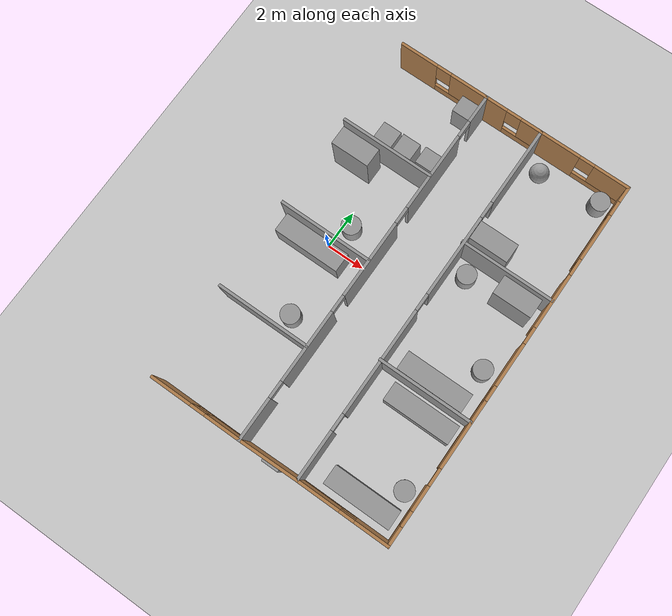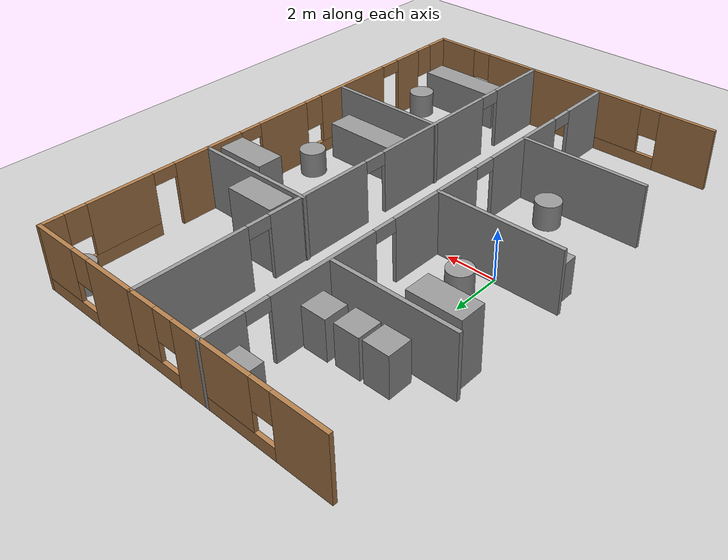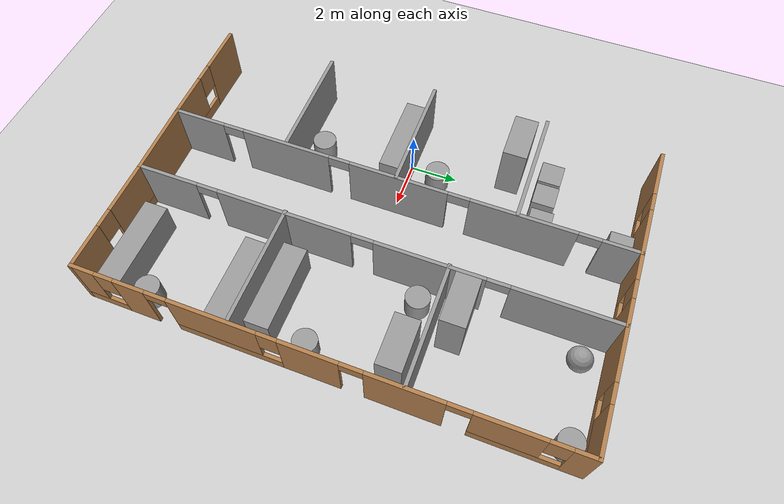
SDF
<sdf version="1.7">
 <world name="default">
  <model name="ground_plane">
   <static>1</static>
   <link name="link">
    <collision name="collision">
     <geometry><plane><normal>0 0 1</normal><size>100 100</size></plane></geometry>
     <surface><friction><ode><mu>100</mu><mu2>50</mu2></ode></friction></surface>
    </collision>
    <visual name="visual">
     <cast_shadows>0</cast_shadows>
     <geometry><plane><normal>0 0 1</normal><size>100 100</size></plane></geometry>
     <material>
      <script><uri>file://media/materials/scripts/gazebo.material</uri><name>Gazebo/Grey</name></script>
     </material>
    </visual>
   </link>
  </model>
  <model name="hospital_floor_v2">
   <link name="Door_19">
    <collision name="Door_19_Collision">
     <geometry><box><size>0.9 0.17 2</size></box></geometry>
     <pose>0 0 1 0 -0 0</pose>
    </collision>
    <visual name="Door_19_Visual">
     <pose>0 0 1 0 -0 0</pose>
     <geometry><box><size>0.9 0.17 2</size></box></geometry>
     <material>
      <script><uri>file://media/materials/scripts/gazebo.material</uri><name>Gazebo/Grey</name></script>
     </material>
    </visual>
    <pose>4.12711 -9.93446 0 0 -0 0</pose>
   </link>
   <link name="Wall_111">
    <pose>7.95 9.8256 0 0 -0 0</pose>
    <visual name="Wall_111_Visual_0">
     <pose>-1.37417 0 1.25 0 -0 0</pose>
     <geometry><box><size>2.25167 0.15 2.5</size></box></geometry>
     <material>
      <script><uri>file://media/materials/scripts/gazebo.material</uri><name>Gazebo/Wood</name></script>
      <ambient>1 1 1 1</ambient>
     </material>
     <meta><layer>0</layer></meta>
    </visual>
    <collision name="Wall_111_Collision_0">
     <geometry><box><size>2.25167 0.15 2.5</size></box></geometry>
     <pose>-1.37417 0 1.25 0 -0 0</pose>
    </collision>
    <visual name="Wall_111_Visual_1">
     <pose>1.12583 0 0.25 0 -0 0</pose>
     <geometry><box><size>2.74833 0.15 0.5</size></box></geometry>
     <material>
      <script><uri>file://media/materials/scripts/gazebo.material</uri><name>Gazebo/Wood</name></script>
      <ambient>1 1 1 1</ambient>
     </material>
     <meta><layer>0</layer></meta>
    </visual>
    <collision name="Wall_111_Collision_1">
     <geometry><box><size>2.74833 0.15 0.5</size></box></geometry>
     <pose>1.12583 0 0.25 0 -0 0</pose>
    </collision>
    <visual name="Wall_111_Visual_2">
     <pose>1.52583 0 1.5 0 -0 0</pose>
     <geometry><box><size>1.94833 0.15 2</size></box></geometry>
     <material>
      <script><uri>file://media/materials/scripts/gazebo.material</uri><name>Gazebo/Wood</name></script>
      <ambient>1 1 1 1</ambient>
     </material>
     <meta><layer>0</layer></meta>
    </visual>
    <collision name="Wall_111_Collision_2">
     <geometry><box><size>1.94833 0.15 2</size></box></geometry>
     <pose>1.52583 0 1.5 0 -0 0</pose>
    </collision>
    <visual name="Wall_111_Visual_3">
     <pose>0.151665 0 1.9 0 -0 0</pose>
     <geometry><box><size>0.8 0.15 1.2</size></box></geometry>
     <material>
      <script><uri>file://media/materials/scripts/gazebo.material</uri><name>Gazebo/Wood</name></script>
      <ambient>1 1 1 1</ambient>
     </material>
     <meta><layer>0</layer></meta>
    </visual>
    <collision name="Wall_111_Collision_3">
     <geometry><box><size>0.8 0.15 1.2</size></box></geometry>
     <pose>0.151665 0 1.9 0 -0 0</pose>
    </collision>
   </link>
   <link name="Wall_112">
    <pose>10.375 0.025599 0 0 -0 -1.5708</pose>
    <visual name="Wall_112_Visual_0">
     <pose>-9.42467 0 1.25 0 -0 0</pose>
     <geometry><box><size>0.900667 0.15 2.5</size></box></geometry>
     <material>
      <script><uri>file://media/materials/scripts/gazebo.material</uri><name>Gazebo/Wood</name></script>
      <ambient>1 1 1 1</ambient>
     </material>
     <meta><layer>0</layer></meta>
    </visual>
    <collision name="Wall_112_Collision_0">
     <geometry><box><size>0.900667 0.15 2.5</size></box></geometry>
     <pose>-9.42467 0 1.25 0 -0 0</pose>
    </collision>
    <visual name="Wall_112_Visual_1">
     <pose>-3.24113 0 1.25 0 -0 0</pose>
     <geometry><box><size>2.95288 0.15 2.5</size></box></geometry>
     <material>
      <script><uri>file://media/materials/scripts/gazebo.material</uri><name>Gazebo/Wood</name></script>
      <ambient>1 1 1 1</ambient>
     </material>
     <meta><layer>0</layer></meta>
    </visual>
    <collision name="Wall_112_Collision_1">
     <geometry><box><size>2.95288 0.15 2.5</size></box></geometry>
     <pose>-3.24113 0 1.25 0 -0 0</pose>
    </collision>
    <visual name="Wall_112_Visual_2">
     <pose>0.29202 0 1.25 0 -0 0</pose>
     <geometry><box><size>2.31342 0.15 2.5</size></box></geometry>
     <material>
      <script><uri>file://media/materials/scripts/gazebo.material</uri><name>Gazebo/Wood</name></script>
      <ambient>1 1 1 1</ambient>
     </material>
     <meta><layer>0</layer></meta>
    </visual>
    <collision name="Wall_112_Collision_2">
     <geometry><box><size>2.31342 0.15 2.5</size></box></geometry>
     <pose>0.29202 0 1.25 0 -0 0</pose>
    </collision>
    <visual name="Wall_112_Visual_3">
     <pose>7.36916 0 1.25 0 -0 0</pose>
     <geometry><box><size>1.2995 0.15 2.5</size></box></geometry>
     <material>
      <script><uri>file://media/materials/scripts/gazebo.material</uri><name>Gazebo/Wood</name></script>
      <ambient>1 1 1 1</ambient>
     </material>
     <meta><layer>0</layer></meta>
    </visual>
    <collision name="Wall_112_Collision_3">
     <geometry><box><size>1.2995 0.15 2.5</size></box></geometry>
     <pose>7.36916 0 1.25 0 -0 0</pose>
    </collision>
    <visual name="Wall_112_Visual_4">
     <pose>-7.29595 0 0.25 0 -0 0</pose>
     <geometry><box><size>3.35676 0.15 0.5</size></box></geometry>
     <material>
      <script><uri>file://media/materials/scripts/gazebo.material</uri><name>Gazebo/Wood</name></script>
      <ambient>1 1 1 1</ambient>
     </material>
     <meta><layer>0</layer></meta>
    </visual>
    <collision name="Wall_112_Collision_4">
     <geometry><box><size>3.35676 0.15 0.5</size></box></geometry>
     <pose>-7.29595 0 0.25 0 -0 0</pose>
    </collision>
    <visual name="Wall_112_Visual_5">
     <pose>3.63407 0 0.25 0 -0 0</pose>
     <geometry><box><size>4.37068 0.15 0.5</size></box></geometry>
     <material>
      <script><uri>file://media/materials/scripts/gazebo.material</uri><name>Gazebo/Wood</name></script>
      <ambient>1 1 1 1</ambient>
     </material>
     <meta><layer>0</layer></meta>
    </visual>
    <collision name="Wall_112_Collision_5">
     <geometry><box><size>4.37068 0.15 0.5</size></box></geometry>
     <pose>3.63407 0 0.25 0 -0 0</pose>
    </collision>
    <visual name="Wall_112_Visual_6">
     <pose>8.94696 0 0.25 0 -0 0</pose>
     <geometry><box><size>1.85609 0.15 0.5</size></box></geometry>
     <material>
      <script><uri>file://media/materials/scripts/gazebo.material</uri><name>Gazebo/Wood</name></script>
      <ambient>1 1 1 1</ambient>
     </material>
     <meta><layer>0</layer></meta>
    </visual>
    <collision name="Wall_112_Collision_6">
     <geometry><box><size>1.85609 0.15 0.5</size></box></geometry>
     <pose>8.94696 0 0.25 0 -0 0</pose>
    </collision>
    <visual name="Wall_112_Visual_7">
     <pose>-6.89595 0 1.5 0 -0 0</pose>
     <geometry><box><size>2.55676 0.15 2</size></box></geometry>
     <material>
      <script><uri>file://media/materials/scripts/gazebo.material</uri><name>Gazebo/Wood</name></script>
      <ambient>1 1 1 1</ambient>
     </material>
     <meta><layer>0</layer></meta>
    </visual>
    <collision name="Wall_112_Collision_7">
     <geometry><box><size>2.55676 0.15 2</size></box></geometry>
     <pose>-6.89595 0 1.5 0 -0 0</pose>
    </collision>
    <visual name="Wall_112_Visual_8">
     <pose>-6.89595 0 1.5 0 -0 0</pose>
     <geometry><box><size>2.55676 0.15 2</size></box></geometry>
     <material>
      <script><uri>file://media/materials/scripts/gazebo.material</uri><name>Gazebo/Wood</name></script>
      <ambient>1 1 1 1</ambient>
     </material>
     <meta><layer>0</layer></meta>
    </visual>
    <collision name="Wall_112_Collision_8">
     <geometry><box><size>2.55676 0.15 2</size></box></geometry>
     <pose>-6.89595 0 1.5 0 -0 0</pose>
    </collision>
    <visual name="Wall_112_Visual_9">
     <pose>4.03407 0 1.5 0 -0 0</pose>
     <geometry><box><size>3.57068 0.15 2</size></box></geometry>
     <material>
      <script><uri>file://media/materials/scripts/gazebo.material</uri><name>Gazebo/Wood</name></script>
      <ambient>1 1 1 1</ambient>
     </material>
     <meta><layer>0</layer></meta>
    </visual>
    <collision name="Wall_112_Collision_9">
     <geometry><box><size>3.57068 0.15 2</size></box></geometry>
     <pose>4.03407 0 1.5 0 -0 0</pose>
    </collision>
    <visual name="Wall_112_Visual_10">
     <pose>4.03407 0 1.5 0 -0 0</pose>
     <geometry><box><size>3.57068 0.15 2</size></box></geometry>
     <material>
      <script><uri>file://media/materials/scripts/gazebo.material</uri><name>Gazebo/Wood</name></script>
      <ambient>1 1 1 1</ambient>
     </material>
     <meta><layer>0</layer></meta>
    </visual>
    <collision name="Wall_112_Collision_10">
     <geometry><box><size>3.57068 0.15 2</size></box></geometry>
     <pose>4.03407 0 1.5 0 -0 0</pose>
    </collision>
    <visual name="Wall_112_Visual_11">
     <pose>9.34695 0 1.5 0 -0 0</pose>
     <geometry><box><size>1.05609 0.15 2</size></box></geometry>
     <material>
      <script><uri>file://media/materials/scripts/gazebo.material</uri><name>Gazebo/Wood</name></script>
      <ambient>1 1 1 1</ambient>
     </material>
     <meta><layer>0</layer></meta>
    </visual>
    <collision name="Wall_112_Collision_11">
     <geometry><box><size>1.05609 0.15 2</size></box></geometry>
     <pose>9.34695 0 1.5 0 -0 0</pose>
    </collision>
    <visual name="Wall_112_Visual_12">
     <pose>-8.57433 0 1.9 0 -0 0</pose>
     <geometry><box><size>0.8 0.15 1.2</size></box></geometry>
     <material>
      <script><uri>file://media/materials/scripts/gazebo.material</uri><name>Gazebo/Wood</name></script>
      <ambient>1 1 1 1</ambient>
     </material>
     <meta><layer>0</layer></meta>
    </visual>
    <collision name="Wall_112_Collision_12">
     <geometry><box><size>0.8 0.15 1.2</size></box></geometry>
     <pose>-8.57433 0 1.9 0 -0 0</pose>
    </collision>
    <visual name="Wall_112_Visual_13">
     <pose>1.84873 0 1.9 0 -0 0</pose>
     <geometry><box><size>0.8 0.15 1.2</size></box></geometry>
     <material>
      <script><uri>file://media/materials/scripts/gazebo.material</uri><name>Gazebo/Wood</name></script>
      <ambient>1 1 1 1</ambient>
     </material>
     <meta><layer>0</layer></meta>
    </visual>
    <collision name="Wall_112_Collision_13">
     <geometry><box><size>0.8 0.15 1.2</size></box></geometry>
     <pose>1.84873 0 1.9 0 -0 0</pose>
    </collision>
    <visual name="Wall_112_Visual_14">
     <pose>8.41891 0 1.9 0 -0 0</pose>
     <geometry><box><size>0.8 0.15 1.2</size></box></geometry>
     <material>
      <script><uri>file://media/materials/scripts/gazebo.material</uri><name>Gazebo/Wood</name></script>
      <ambient>1 1 1 1</ambient>
     </material>
     <meta><layer>0</layer></meta>
    </visual>
    <collision name="Wall_112_Collision_14">
     <geometry><box><size>0.8 0.15 1.2</size></box></geometry>
     <pose>8.41891 0 1.9 0 -0 0</pose>
    </collision>
    <visual name="Wall_112_Visual_15">
     <pose>-1.31469 0 2.25 0 -0 0</pose>
     <geometry><box><size>0.9 0.15 0.5</size></box></geometry>
     <material>
      <script><uri>file://media/materials/scripts/gazebo.material</uri><name>Gazebo/Wood</name></script>
      <ambient>1 1 1 1</ambient>
     </material>
     <meta><layer>0</layer></meta>
    </visual>
    <collision name="Wall_112_Collision_15">
     <geometry><box><size>0.9 0.15 0.5</size></box></geometry>
     <pose>-1.31469 0 2.25 0 -0 0</pose>
    </collision>
    <visual name="Wall_112_Visual_16">
     <pose>-5.16757 0 2.25 0 -0 0</pose>
     <geometry><box><size>0.9 0.15 0.5</size></box></geometry>
     <material>
      <script><uri>file://media/materials/scripts/gazebo.material</uri><name>Gazebo/Wood</name></script>
      <ambient>1 1 1 1</ambient>
     </material>
     <meta><layer>0</layer></meta>
    </visual>
    <collision name="Wall_112_Collision_16">
     <geometry><box><size>0.9 0.15 0.5</size></box></geometry>
     <pose>-5.16757 0 2.25 0 -0 0</pose>
    </collision>
    <visual name="Wall_112_Visual_17">
     <pose>-5.16757 0 2.25 0 -0 0</pose>
     <geometry><box><size>0.9 0.15 0.5</size></box></geometry>
     <material>
      <script><uri>file://media/materials/scripts/gazebo.material</uri><name>Gazebo/Wood</name></script>
      <ambient>1 1 1 1</ambient>
     </material>
     <meta><layer>0</layer></meta>
    </visual>
    <collision name="Wall_112_Collision_17">
     <geometry><box><size>0.9 0.15 0.5</size></box></geometry>
     <pose>-5.16757 0 2.25 0 -0 0</pose>
    </collision>
    <visual name="Wall_112_Visual_18">
     <pose>6.26941 0 2.25 0 -0 0</pose>
     <geometry><box><size>0.9 0.15 0.5</size></box></geometry>
     <material>
      <script><uri>file://media/materials/scripts/gazebo.material</uri><name>Gazebo/Wood</name></script>
      <ambient>1 1 1 1</ambient>
     </material>
     <meta><layer>0</layer></meta>
    </visual>
    <collision name="Wall_112_Collision_18">
     <geometry><box><size>0.9 0.15 0.5</size></box></geometry>
     <pose>6.26941 0 2.25 0 -0 0</pose>
    </collision>
    <visual name="Wall_112_Visual_19">
     <pose>6.26941 0 2.25 0 -0 0</pose>
     <geometry><box><size>0.9 0.15 0.5</size></box></geometry>
     <material>
      <script><uri>file://media/materials/scripts/gazebo.material</uri><name>Gazebo/Wood</name></script>
      <ambient>1 1 1 1</ambient>
     </material>
     <meta><layer>0</layer></meta>
    </visual>
    <collision name="Wall_112_Collision_19">
     <geometry><box><size>0.9 0.15 0.5</size></box></geometry>
     <pose>6.26941 0 2.25 0 -0 0</pose>
    </collision>
   </link>
   <link name="Wall_113">
    <pose>7.95 -9.7744 0 0 -0 3.14159</pose>
    <visual name="Wall_113_Visual_0">
     <pose>-1.56639 0 1.25 0 -0 0</pose>
     <geometry><box><size>1.86722 0.15 2.5</size></box></geometry>
     <material>
      <script><uri>file://media/materials/scripts/gazebo.material</uri><name>Gazebo/Wood</name></script>
      <ambient>1 1 1 1</ambient>
     </material>
     <meta><layer>0</layer></meta>
    </visual>
    <collision name="Wall_113_Collision_0">
     <geometry><box><size>1.86722 0.15 2.5</size></box></geometry>
     <pose>-1.56639 0 1.25 0 -0 0</pose>
    </collision>
    <visual name="Wall_113_Visual_1">
     <pose>0.933611 0 0.25 0 -0 0</pose>
     <geometry><box><size>3.13278 0.15 0.5</size></box></geometry>
     <material>
      <script><uri>file://media/materials/scripts/gazebo.material</uri><name>Gazebo/Wood</name></script>
      <ambient>1 1 1 1</ambient>
     </material>
     <meta><layer>0</layer></meta>
    </visual>
    <collision name="Wall_113_Collision_1">
     <geometry><box><size>3.13278 0.15 0.5</size></box></geometry>
     <pose>0.933611 0 0.25 0 -0 0</pose>
    </collision>
    <visual name="Wall_113_Visual_2">
     <pose>1.33361 0 1.5 0 -0 0</pose>
     <geometry><box><size>2.33278 0.15 2</size></box></geometry>
     <material>
      <script><uri>file://media/materials/scripts/gazebo.material</uri><name>Gazebo/Wood</name></script>
      <ambient>1 1 1 1</ambient>
     </material>
     <meta><layer>0</layer></meta>
    </visual>
    <collision name="Wall_113_Collision_2">
     <geometry><box><size>2.33278 0.15 2</size></box></geometry>
     <pose>1.33361 0 1.5 0 -0 0</pose>
    </collision>
    <visual name="Wall_113_Visual_3">
     <pose>-0.232779 0 1.9 0 -0 0</pose>
     <geometry><box><size>0.8 0.15 1.2</size></box></geometry>
     <material>
      <script><uri>file://media/materials/scripts/gazebo.material</uri><name>Gazebo/Wood</name></script>
      <ambient>1 1 1 1</ambient>
     </material>
     <meta><layer>0</layer></meta>
    </visual>
    <collision name="Wall_113_Collision_3">
     <geometry><box><size>0.8 0.15 1.2</size></box></geometry>
     <pose>-0.232779 0 1.9 0 -0 0</pose>
    </collision>
   </link>
   <link name="Wall_115">
    <collision name="Wall_115_Collision">
     <geometry><box><size>5 0.15 2.5</size></box></geometry>
     <pose>0 0 1.25 0 -0 0</pose>
    </collision>
    <visual name="Wall_115_Visual">
     <pose>0 0 1.25 0 -0 0</pose>
     <geometry><box><size>5 0.15 2.5</size></box></geometry>
     <material>
      <script><uri>file://media/materials/scripts/gazebo.material</uri><name>Gazebo/Grey</name></script>
      <ambient>1 1 1 1</ambient>
     </material>
     <meta><layer>0</layer></meta>
    </visual>
    <pose>-0.036828 5.04089 0 0 -0 0</pose>
   </link>
   <link name="Wall_117">
    <collision name="Wall_117_Collision">
     <geometry><box><size>5 0.15 2.5</size></box></geometry>
     <pose>0 0 1.25 0 -0 0</pose>
    </collision>
    <visual name="Wall_117_Visual">
     <pose>0 0 1.25 0 -0 0</pose>
     <geometry><box><size>5 0.15 2.5</size></box></geometry>
     <material>
      <script><uri>file://media/materials/scripts/gazebo.material</uri><name>Gazebo/Grey</name></script>
      <ambient>1 1 1 1</ambient>
     </material>
     <meta><layer>0</layer></meta>
    </visual>
    <pose>-0.036828 0.052719 0 0 -0 0</pose>
   </link>
   <link name="Wall_119">
    <collision name="Wall_119_Collision">
     <geometry><box><size>5 0.15 2.5</size></box></geometry>
     <pose>0 0 1.25 0 -0 0</pose>
    </collision>
    <visual name="Wall_119_Visual">
     <pose>0 0 1.25 0 -0 0</pose>
     <geometry><box><size>5 0.15 2.5</size></box></geometry>
     <material>
      <script><uri>file://media/materials/scripts/gazebo.material</uri><name>Gazebo/Grey</name></script>
      <ambient>1 1 1 1</ambient>
     </material>
     <meta><layer>0</layer></meta>
    </visual>
    <pose>-0.036828 -4.77454 0 0 -0 0</pose>
   </link>
   <link name="Wall_123">
    <collision name="Wall_123_Collision">
     <geometry><box><size>5 0.15 2.5</size></box></geometry>
     <pose>0 0 1.25 0 -0 0</pose>
    </collision>
    <visual name="Wall_123_Visual">
     <pose>0 0 1.25 0 -0 0</pose>
     <geometry><box><size>5 0.15 2.5</size></box></geometry>
     <material>
      <script><uri>file://media/materials/scripts/gazebo.material</uri><name>Gazebo/Grey</name></script>
      <ambient>1 1 1 1</ambient>
     </material>
     <meta><layer>0</layer></meta>
    </visual>
    <pose>7.90133 3.27089 0 0 -0 0</pose>
   </link>
   <link name="Wall_125">
    <collision name="Wall_125_Collision">
     <geometry><box><size>5 0.15 2.5</size></box></geometry>
     <pose>0 0 1.25 0 -0 0</pose>
    </collision>
    <visual name="Wall_125_Visual">
     <pose>0 0 1.25 0 -0 0</pose>
     <geometry><box><size>5 0.15 2.5</size></box></geometry>
     <material>
      <script><uri>file://media/materials/scripts/gazebo.material</uri><name>Gazebo/Grey</name></script>
      <ambient>1 1 1 1</ambient>
     </material>
     <meta><layer>0</layer></meta>
    </visual>
    <pose>7.90133 -3.38 0 0 -0 0</pose>
   </link>
   <link name="Wall_51">
    <pose>0 9.8256 0 0 -0 0</pose>
    <visual name="Wall_51_Visual_0">
     <pose>-1.45483 0 1.25 0 -0 0</pose>
     <geometry><box><size>2.09033 0.15 2.5</size></box></geometry>
     <material>
      <script><uri>file://media/materials/scripts/gazebo.material</uri><name>Gazebo/Wood</name></script>
      <ambient>1 1 1 1</ambient>
     </material>
     <meta><layer>0</layer></meta>
    </visual>
    <collision name="Wall_51_Collision_0">
     <geometry><box><size>2.09033 0.15 2.5</size></box></geometry>
     <pose>-1.45483 0 1.25 0 -0 0</pose>
    </collision>
    <visual name="Wall_51_Visual_1">
     <pose>1.04517 0 0.25 0 -0 0</pose>
     <geometry><box><size>2.90967 0.15 0.5</size></box></geometry>
     <material>
      <script><uri>file://media/materials/scripts/gazebo.material</uri><name>Gazebo/Wood</name></script>
      <ambient>1 1 1 1</ambient>
     </material>
     <meta><layer>0</layer></meta>
    </visual>
    <collision name="Wall_51_Collision_1">
     <geometry><box><size>2.90967 0.15 0.5</size></box></geometry>
     <pose>1.04517 0 0.25 0 -0 0</pose>
    </collision>
    <visual name="Wall_51_Visual_2">
     <pose>1.44517 0 1.5 0 -0 0</pose>
     <geometry><box><size>2.10967 0.15 2</size></box></geometry>
     <material>
      <script><uri>file://media/materials/scripts/gazebo.material</uri><name>Gazebo/Wood</name></script>
      <ambient>1 1 1 1</ambient>
     </material>
     <meta><layer>0</layer></meta>
    </visual>
    <collision name="Wall_51_Collision_2">
     <geometry><box><size>2.10967 0.15 2</size></box></geometry>
     <pose>1.44517 0 1.5 0 -0 0</pose>
    </collision>
    <visual name="Wall_51_Visual_3">
     <pose>-0.009668 0 1.9 0 -0 0</pose>
     <geometry><box><size>0.8 0.15 1.2</size></box></geometry>
     <material>
      <script><uri>file://media/materials/scripts/gazebo.material</uri><name>Gazebo/Wood</name></script>
      <ambient>1 1 1 1</ambient>
     </material>
     <meta><layer>0</layer></meta>
    </visual>
    <collision name="Wall_51_Collision_3">
     <geometry><box><size>0.8 0.15 1.2</size></box></geometry>
     <pose>-0.009668 0 1.9 0 -0 0</pose>
    </collision>
   </link>
   <link name="Wall_60">
    <pose>0 -9.8244 0 0 -0 0</pose>
    <visual name="Wall_60_Visual_0">
     <pose>-1.394 0 1.25 0 -0 0</pose>
     <geometry><box><size>2.212 0.15 2.5</size></box></geometry>
     <material>
      <script><uri>file://media/materials/scripts/gazebo.material</uri><name>Gazebo/Wood</name></script>
      <ambient>1 1 1 1</ambient>
     </material>
     <meta><layer>0</layer></meta>
    </visual>
    <collision name="Wall_60_Collision_0">
     <geometry><box><size>2.212 0.15 2.5</size></box></geometry>
     <pose>-1.394 0 1.25 0 -0 0</pose>
    </collision>
    <visual name="Wall_60_Visual_1">
     <pose>1.106 0 0.25 0 -0 0</pose>
     <geometry><box><size>2.788 0.15 0.5</size></box></geometry>
     <material>
      <script><uri>file://media/materials/scripts/gazebo.material</uri><name>Gazebo/Wood</name></script>
      <ambient>1 1 1 1</ambient>
     </material>
     <meta><layer>0</layer></meta>
    </visual>
    <collision name="Wall_60_Collision_1">
     <geometry><box><size>2.788 0.15 0.5</size></box></geometry>
     <pose>1.106 0 0.25 0 -0 0</pose>
    </collision>
    <visual name="Wall_60_Visual_2">
     <pose>1.506 0 1.5 0 -0 0</pose>
     <geometry><box><size>1.988 0.15 2</size></box></geometry>
     <material>
      <script><uri>file://media/materials/scripts/gazebo.material</uri><name>Gazebo/Wood</name></script>
      <ambient>1 1 1 1</ambient>
     </material>
     <meta><layer>0</layer></meta>
    </visual>
    <collision name="Wall_60_Collision_2">
     <geometry><box><size>1.988 0.15 2</size></box></geometry>
     <pose>1.506 0 1.5 0 -0 0</pose>
    </collision>
    <visual name="Wall_60_Visual_3">
     <pose>0.112002 0 1.9 0 -0 0</pose>
     <geometry><box><size>0.8 0.15 1.2</size></box></geometry>
     <material>
      <script><uri>file://media/materials/scripts/gazebo.material</uri><name>Gazebo/Wood</name></script>
      <ambient>1 1 1 1</ambient>
     </material>
     <meta><layer>0</layer></meta>
    </visual>
    <collision name="Wall_60_Collision_3">
     <geometry><box><size>0.8 0.15 1.2</size></box></geometry>
     <pose>0.112002 0 1.9 0 -0 0</pose>
    </collision>
   </link>
   <link name="Wall_62">
    <pose>2.425 0.000599 0 0 -0 1.5708</pose>
    <visual name="Wall_62_Visual_0">
     <pose>-8.74333 0 1.25 0 -0 0</pose>
     <geometry><box><size>2.31335 0.15 2.5</size></box></geometry>
     <material>
      <script><uri>file://media/materials/scripts/gazebo.material</uri><name>Gazebo/Grey</name></script>
      <ambient>1 1 1 1</ambient>
     </material>
     <meta><layer>0</layer></meta>
    </visual>
    <collision name="Wall_62_Collision_0">
     <geometry><box><size>2.31335 0.15 2.5</size></box></geometry>
     <pose>-8.74333 0 1.25 0 -0 0</pose>
    </collision>
    <visual name="Wall_62_Visual_1">
     <pose>-4.76409 0 1.25 0 -0 0</pose>
     <geometry><box><size>3.84513 0.15 2.5</size></box></geometry>
     <material>
      <script><uri>file://media/materials/scripts/gazebo.material</uri><name>Gazebo/Grey</name></script>
      <ambient>1 1 1 1</ambient>
     </material>
     <meta><layer>0</layer></meta>
    </visual>
    <collision name="Wall_62_Collision_1">
     <geometry><box><size>3.84513 0.15 2.5</size></box></geometry>
     <pose>-4.76409 0 1.25 0 -0 0</pose>
    </collision>
    <visual name="Wall_62_Visual_2">
     <pose>0.143268 0 1.25 0 -0 0</pose>
     <geometry><box><size>4.16958 0.15 2.5</size></box></geometry>
     <material>
      <script><uri>file://media/materials/scripts/gazebo.material</uri><name>Gazebo/Grey</name></script>
      <ambient>1 1 1 1</ambient>
     </material>
     <meta><layer>0</layer></meta>
    </visual>
    <collision name="Wall_62_Collision_2">
     <geometry><box><size>4.16958 0.15 2.5</size></box></geometry>
     <pose>0.143268 0 1.25 0 -0 0</pose>
    </collision>
    <visual name="Wall_62_Visual_3">
     <pose>5.27369 0 1.25 0 -0 0</pose>
     <geometry><box><size>4.29125 0.15 2.5</size></box></geometry>
     <material>
      <script><uri>file://media/materials/scripts/gazebo.material</uri><name>Gazebo/Grey</name></script>
      <ambient>1 1 1 1</ambient>
     </material>
     <meta><layer>0</layer></meta>
    </visual>
    <collision name="Wall_62_Collision_3">
     <geometry><box><size>4.29125 0.15 2.5</size></box></geometry>
     <pose>5.27369 0 1.25 0 -0 0</pose>
    </collision>
    <visual name="Wall_62_Visual_4">
     <pose>9.10966 0 1.25 0 -0 0</pose>
     <geometry><box><size>1.58069 0.15 2.5</size></box></geometry>
     <material>
      <script><uri>file://media/materials/scripts/gazebo.material</uri><name>Gazebo/Grey</name></script>
      <ambient>1 1 1 1</ambient>
     </material>
     <meta><layer>0</layer></meta>
    </visual>
    <collision name="Wall_62_Collision_4">
     <geometry><box><size>1.58069 0.15 2.5</size></box></geometry>
     <pose>9.10966 0 1.25 0 -0 0</pose>
    </collision>
    <visual name="Wall_62_Visual_5">
     <pose>-7.13665 0 2.25 0 -0 0</pose>
     <geometry><box><size>0.9 0.15 0.5</size></box></geometry>
     <material>
      <script><uri>file://media/materials/scripts/gazebo.material</uri><name>Gazebo/Grey</name></script>
      <ambient>1 1 1 1</ambient>
     </material>
     <meta><layer>0</layer></meta>
    </visual>
    <collision name="Wall_62_Collision_5">
     <geometry><box><size>0.9 0.15 0.5</size></box></geometry>
     <pose>-7.13665 0 2.25 0 -0 0</pose>
    </collision>
    <visual name="Wall_62_Visual_6">
     <pose>-2.39152 0 2.25 0 -0 0</pose>
     <geometry><box><size>0.9 0.15 0.5</size></box></geometry>
     <material>
      <script><uri>file://media/materials/scripts/gazebo.material</uri><name>Gazebo/Grey</name></script>
      <ambient>1 1 1 1</ambient>
     </material>
     <meta><layer>0</layer></meta>
    </visual>
    <collision name="Wall_62_Collision_6">
     <geometry><box><size>0.9 0.15 0.5</size></box></geometry>
     <pose>-2.39152 0 2.25 0 -0 0</pose>
    </collision>
    <visual name="Wall_62_Visual_7">
     <pose>2.67806 0 2.25 0 -0 0</pose>
     <geometry><box><size>0.9 0.15 0.5</size></box></geometry>
     <material>
      <script><uri>file://media/materials/scripts/gazebo.material</uri><name>Gazebo/Grey</name></script>
      <ambient>1 1 1 1</ambient>
     </material>
     <meta><layer>0</layer></meta>
    </visual>
    <collision name="Wall_62_Collision_7">
     <geometry><box><size>0.9 0.15 0.5</size></box></geometry>
     <pose>2.67806 0 2.25 0 -0 0</pose>
    </collision>
    <visual name="Wall_62_Visual_8">
     <pose>7.86931 0 2.25 0 -0 0</pose>
     <geometry><box><size>0.9 0.15 0.5</size></box></geometry>
     <material>
      <script><uri>file://media/materials/scripts/gazebo.material</uri><name>Gazebo/Grey</name></script>
      <ambient>1 1 1 1</ambient>
     </material>
     <meta><layer>0</layer></meta>
    </visual>
    <collision name="Wall_62_Collision_8">
     <geometry><box><size>0.9 0.15 0.5</size></box></geometry>
     <pose>7.86931 0 2.25 0 -0 0</pose>
    </collision>
   </link>
   <link name="Wall_63">
    <pose>3.975 9.8256 0 0 -0 0</pose>
    <visual name="Wall_63_Visual_0">
     <pose>-0.997279 0 1.25 0 -0 0</pose>
     <geometry><box><size>1.25544 0.15 2.5</size></box></geometry>
     <material>
      <script><uri>file://media/materials/scripts/gazebo.material</uri><name>Gazebo/Wood</name></script>
      <ambient>1 1 1 1</ambient>
     </material>
     <meta><layer>0</layer></meta>
    </visual>
    <collision name="Wall_63_Collision_0">
     <geometry><box><size>1.25544 0.15 2.5</size></box></geometry>
     <pose>-0.997279 0 1.25 0 -0 0</pose>
    </collision>
    <visual name="Wall_63_Visual_1">
     <pose>0.627721 0 0.25 0 -0 0</pose>
     <geometry><box><size>1.99456 0.15 0.5</size></box></geometry>
     <material>
      <script><uri>file://media/materials/scripts/gazebo.material</uri><name>Gazebo/Wood</name></script>
      <ambient>1 1 1 1</ambient>
     </material>
     <meta><layer>0</layer></meta>
    </visual>
    <collision name="Wall_63_Collision_1">
     <geometry><box><size>1.99456 0.15 0.5</size></box></geometry>
     <pose>0.627721 0 0.25 0 -0 0</pose>
    </collision>
    <visual name="Wall_63_Visual_2">
     <pose>1.02772 0 1.5 0 -0 0</pose>
     <geometry><box><size>1.19456 0.15 2</size></box></geometry>
     <material>
      <script><uri>file://media/materials/scripts/gazebo.material</uri><name>Gazebo/Wood</name></script>
      <ambient>1 1 1 1</ambient>
     </material>
     <meta><layer>0</layer></meta>
    </visual>
    <collision name="Wall_63_Collision_2">
     <geometry><box><size>1.19456 0.15 2</size></box></geometry>
     <pose>1.02772 0 1.5 0 -0 0</pose>
    </collision>
    <visual name="Wall_63_Visual_3">
     <pose>0.030442 0 1.9 0 -0 0</pose>
     <geometry><box><size>0.8 0.15 1.2</size></box></geometry>
     <material>
      <script><uri>file://media/materials/scripts/gazebo.material</uri><name>Gazebo/Wood</name></script>
      <ambient>1 1 1 1</ambient>
     </material>
     <meta><layer>0</layer></meta>
    </visual>
    <collision name="Wall_63_Collision_3">
     <geometry><box><size>0.8 0.15 1.2</size></box></geometry>
     <pose>0.030442 0 1.9 0 -0 0</pose>
    </collision>
   </link>
   <link name="Wall_64">
    <pose>5.525 0.025599 0 0 -0 -1.5708</pose>
    <visual name="Wall_64_Visual_0">
     <pose>-7.72601 0 1.25 0 -0 0</pose>
     <geometry><box><size>4.29798 0.15 2.5</size></box></geometry>
     <material>
      <script><uri>file://media/materials/scripts/gazebo.material</uri><name>Gazebo/Grey</name></script>
      <ambient>1 1 1 1</ambient>
     </material>
     <meta><layer>0</layer></meta>
    </visual>
    <collision name="Wall_64_Collision_0">
     <geometry><box><size>4.29798 0.15 2.5</size></box></geometry>
     <pose>-7.72601 0 1.25 0 -0 0</pose>
    </collision>
    <visual name="Wall_64_Visual_1">
     <pose>-2.47056 0 1.25 0 -0 0</pose>
     <geometry><box><size>4.41292 0.15 2.5</size></box></geometry>
     <material>
      <script><uri>file://media/materials/scripts/gazebo.material</uri><name>Gazebo/Grey</name></script>
      <ambient>1 1 1 1</ambient>
     </material>
     <meta><layer>0</layer></meta>
    </visual>
    <collision name="Wall_64_Collision_1">
     <geometry><box><size>4.41292 0.15 2.5</size></box></geometry>
     <pose>-2.47056 0 1.25 0 -0 0</pose>
    </collision>
    <visual name="Wall_64_Visual_2">
     <pose>3.471 0 1.25 0 -0 0</pose>
     <geometry><box><size>5.67018 0.15 2.5</size></box></geometry>
     <material>
      <script><uri>file://media/materials/scripts/gazebo.material</uri><name>Gazebo/Grey</name></script>
      <ambient>1 1 1 1</ambient>
     </material>
     <meta><layer>0</layer></meta>
    </visual>
    <collision name="Wall_64_Collision_2">
     <geometry><box><size>5.67018 0.15 2.5</size></box></geometry>
     <pose>3.471 0 1.25 0 -0 0</pose>
    </collision>
    <visual name="Wall_64_Visual_3">
     <pose>8.54054 0 1.25 0 -0 0</pose>
     <geometry><box><size>2.66891 0.15 2.5</size></box></geometry>
     <material>
      <script><uri>file://media/materials/scripts/gazebo.material</uri><name>Gazebo/Grey</name></script>
      <ambient>1 1 1 1</ambient>
     </material>
     <meta><layer>0</layer></meta>
    </visual>
    <collision name="Wall_64_Collision_3">
     <geometry><box><size>2.66891 0.15 2.5</size></box></geometry>
     <pose>8.54054 0 1.25 0 -0 0</pose>
    </collision>
    <visual name="Wall_64_Visual_4">
     <pose>-5.12702 0 2.25 0 -0 0</pose>
     <geometry><box><size>0.9 0.15 0.5</size></box></geometry>
     <material>
      <script><uri>file://media/materials/scripts/gazebo.material</uri><name>Gazebo/Grey</name></script>
      <ambient>1 1 1 1</ambient>
     </material>
     <meta><layer>0</layer></meta>
    </visual>
    <collision name="Wall_64_Collision_4">
     <geometry><box><size>0.9 0.15 0.5</size></box></geometry>
     <pose>-5.12702 0 2.25 0 -0 0</pose>
    </collision>
    <visual name="Wall_64_Visual_5">
     <pose>0.185907 0 2.25 0 -0 0</pose>
     <geometry><box><size>0.9 0.15 0.5</size></box></geometry>
     <material>
      <script><uri>file://media/materials/scripts/gazebo.material</uri><name>Gazebo/Grey</name></script>
      <ambient>1 1 1 1</ambient>
     </material>
     <meta><layer>0</layer></meta>
    </visual>
    <collision name="Wall_64_Collision_5">
     <geometry><box><size>0.9 0.15 0.5</size></box></geometry>
     <pose>0.185907 0 2.25 0 -0 0</pose>
    </collision>
    <visual name="Wall_64_Visual_6">
     <pose>6.75609 0 2.25 0 -0 0</pose>
     <geometry><box><size>0.9 0.15 0.5</size></box></geometry>
     <material>
      <script><uri>file://media/materials/scripts/gazebo.material</uri><name>Gazebo/Grey</name></script>
      <ambient>1 1 1 1</ambient>
     </material>
     <meta><layer>0</layer></meta>
    </visual>
    <collision name="Wall_64_Collision_6">
     <geometry><box><size>0.9 0.15 0.5</size></box></geometry>
     <pose>6.75609 0 2.25 0 -0 0</pose>
    </collision>
   </link>
   <link name="Wall_65">
    <collision name="Wall_65_Collision">
     <geometry><box><size>3.2504 0.15 2.5</size></box></geometry>
     <pose>0 0 1.25 0 -0 0</pose>
    </collision>
    <visual name="Wall_65_Visual">
     <pose>0 0 1.25 0 -0 0</pose>
     <geometry><box><size>3.2504 0.15 2.5</size></box></geometry>
     <material>
      <script><uri>file://media/materials/scripts/gazebo.material</uri><name>Gazebo/Wood</name></script>
      <ambient>1 1 1 1</ambient>
     </material>
     <meta><layer>0</layer></meta>
    </visual>
    <pose>3.975 -9.7994 0 0 -0 -3.12547</pose>
   </link>
   <static>1</static>
  </model>
  <model name="unit_box_0">
   <pose>-1.27711 4.21102 1.27141 0 -0 0.00027</pose>
   <link name="link">
    <inertial>
     <mass>1</mass>
     <inertia>
      <ixx>0.166667</ixx>
      <ixy>0</ixy>
      <ixz>0</ixz>
      <iyy>0.166667</iyy>
      <iyz>0</iyz>
      <izz>0.166667</izz>
     </inertia>
    </inertial>
    <collision name="collision"><geometry><box><size>2.0518 1 2.54282</size></box></geometry></collision>
    <visual name="visual">
     <geometry><box><size>2.0518 1 2.54282</size></box></geometry>
     <material>
      <script><name>Gazebo/Grey</name><uri>file://media/materials/scripts/gazebo.material</uri></script>
     </material>
    </visual>
   </link>
  </model>
  <model name="unit_box_2">
   <pose>-0.476418 -0.582589 0.747086 0 0.00015 -2.1e-05</pose>
   <link name="link">
    <inertial>
     <mass>1</mass>
     <inertia>
      <ixx>0.166667</ixx>
      <ixy>0</ixy>
      <ixz>0</ixz>
      <iyy>0.166667</iyy>
      <iyz>0</iyz>
      <izz>0.166667</izz>
     </inertia>
    </inertial>
    <collision name="collision"><geometry><box><size>3.55191 1 1.4947</size></box></geometry></collision>
    <visual name="visual">
     <geometry><box><size>3.55191 1 1.4947</size></box></geometry>
     <material>
      <script><name>Gazebo/Grey</name><uri>file://media/materials/scripts/gazebo.material</uri></script>
     </material>
    </visual>
   </link>
  </model>
  <model name="unit_cylinder_0">
   <pose>0.633409 -3.89741 0.499994 -4e-06 -2e-06 -0</pose>
   <link name="link">
    <inertial>
     <mass>1</mass>
     <inertia><ixx>0.145833</ixx><ixy>0</ixy><ixz>0</ixz><iyy>0.145833</iyy><iyz>0</iyz><izz>0.125</izz></inertia>
    </inertial>
    <collision name="collision">
     <geometry><cylinder><radius>0.5</radius><length>1</length></cylinder></geometry>
    </collision>
    <visual name="visual">
     <geometry><cylinder><radius>0.5</radius><length>1</length></cylinder></geometry>
     <material>
      <script><name>Gazebo/Grey</name><uri>file://media/materials/scripts/gazebo.material</uri></script>
     </material>
    </visual>
   </link>
  </model>
  <model name="unit_sphere">
   <pose>6.43497 8.8112 0.5 0 -0 0</pose>
   <link name="link">
    <inertial>
     <mass>1</mass>
     <inertia><ixx>0.1</ixx><ixy>0</ixy><ixz>0</ixz><iyy>0.1</iyy><iyz>0</iyz><izz>0.1</izz></inertia>
    </inertial>
    <collision name="collision"><geometry><sphere><radius>0.5</radius></sphere></geometry></collision>
    <visual name="visual">
     <geometry><sphere><radius>0.5</radius></sphere></geometry>
     <material>
      <script><name>Gazebo/Grey</name><uri>file://media/materials/scripts/gazebo.material</uri></script>
     </material>
    </visual>
   </link>
  </model>
  <model name="unit_box_clone_1_clone_0">
   <pose>1.7793 9.14427 0.807095 0 -0 0.001544</pose>
   <link name="link">
    <inertial>
     <mass>1</mass>
     <inertia>
      <ixx>0.166667</ixx>
      <ixy>0</ixy>
      <ixz>0</ixz>
      <iyy>0.166667</iyy>
      <iyz>0</iyz>
      <izz>0.166667</izz>
     </inertia>
    </inertial>
    <collision name="collision"><geometry><box><size>1 0.926158 1.61419</size></box></geometry></collision>
    <visual name="visual">
     <geometry><box><size>1 0.926158 1.61419</size></box></geometry>
     <material>
      <script><name>Gazebo/Grey</name><uri>file://media/materials/scripts/gazebo.material</uri></script>
     </material>
    </visual>
   </link>
  </model>
  <model name="unit_box_clone_1_clone_clone">
   <pose>1.79464 5.93628 0.807091 2e-06 5e-06 0.002017</pose>
   <link name="link">
    <inertial>
     <mass>1</mass>
     <inertia>
      <ixx>0.166667</ixx>
      <ixy>0</ixy>
      <ixz>0</ixz>
      <iyy>0.166667</iyy>
      <iyz>0</iyz>
      <izz>0.166667</izz>
     </inertia>
    </inertial>
    <collision name="collision"><geometry><box><size>1 0.926158 1.61419</size></box></geometry></collision>
    <visual name="visual">
     <geometry><box><size>1 0.926158 1.61419</size></box></geometry>
     <material>
      <script><name>Gazebo/Grey</name><uri>file://media/materials/scripts/gazebo.material</uri></script>
     </material>
    </visual>
   </link>
  </model>
  <model name="unit_box_clone_1_clone_clone_1">
   <pose>-0.584493 5.84416 0.807091 -2e-06 -5e-06 0.001978</pose>
   <link name="link">
    <inertial>
     <mass>1</mass>
     <inertia>
      <ixx>0.166667</ixx>
      <ixy>0</ixy>
      <ixz>0</ixz>
      <iyy>0.166667</iyy>
      <iyz>0</iyz>
      <izz>0.166667</izz>
     </inertia>
    </inertial>
    <collision name="collision"><geometry><box><size>1 0.926158 1.61419</size></box></geometry></collision>
    <visual name="visual">
     <geometry><box><size>1 0.926158 1.61419</size></box></geometry>
     <material>
      <script><name>Gazebo/Grey</name><uri>file://media/materials/scripts/gazebo.material</uri></script>
     </material>
    </visual>
   </link>
  </model>
  <model name="unit_box_clone_1_clone_clone_2">
   <pose>0.536004 5.85953 0.807095 0 -0 0.002129</pose>
   <link name="link">
    <inertial>
     <mass>1</mass>
     <inertia>
      <ixx>0.166667</ixx>
      <ixy>0</ixy>
      <ixz>0</ixz>
      <iyy>0.166667</iyy>
      <iyz>0</iyz>
      <izz>0.166667</izz>
     </inertia>
    </inertial>
    <collision name="collision"><geometry><box><size>1 0.926158 1.61419</size></box></geometry></collision>
    <visual name="visual">
     <geometry><box><size>1 0.926158 1.61419</size></box></geometry>
     <material>
      <script><name>Gazebo/Grey</name><uri>file://media/materials/scripts/gazebo.material</uri></script>
     </material>
    </visual>
   </link>
  </model>
  <model name="unit_cylinder">
   <pose>0.473142 1.27189 0.499998 3e-06 -3e-06 0</pose>
   <link name="link">
    <inertial>
     <mass>1</mass>
     <inertia><ixx>0.145833</ixx><ixy>0</ixy><ixz>0</ixz><iyy>0.145833</iyy><iyz>0</iyz><izz>0.125</izz></inertia>
    </inertial>
    <collision name="collision">
     <geometry><cylinder><radius>0.5</radius><length>1</length></cylinder></geometry>
    </collision>
    <visual name="visual">
     <geometry><cylinder><radius>0.5</radius><length>1</length></cylinder></geometry>
     <material>
      <script><name>Gazebo/Grey</name><uri>file://media/materials/scripts/gazebo.material</uri></script>
     </material>
    </visual>
   </link>
  </model>
  <model name="unit_box_2_clone">
   <pose>8.00798 -2.69792 0.747084 -0 0.00015 4e-05</pose>
   <link name="link">
    <inertial>
     <mass>1</mass>
     <inertia>
      <ixx>0.166667</ixx>
      <ixy>0</ixy>
      <ixz>0</ixz>
      <iyy>0.166667</iyy>
      <iyz>0</iyz>
      <izz>0.166667</izz>
     </inertia>
    </inertial>
    <collision name="collision"><geometry><box><size>3.55191 1 1.4947</size></box></geometry></collision>
    <visual name="visual">
     <geometry><box><size>3.55191 1 1.4947</size></box></geometry>
     <material>
      <script><name>Gazebo/Grey</name><uri>file://media/materials/scripts/gazebo.material</uri></script>
     </material>
    </visual>
   </link>
  </model>
  <model name="unit_box_2_clone_0">
   <pose>8.24797 -8.77949 0.747084 -0 0.00015 -3.9e-05</pose>
   <link name="link">
    <inertial>
     <mass>1</mass>
     <inertia>
      <ixx>0.166667</ixx>
      <ixy>0</ixy>
      <ixz>0</ixz>
      <iyy>0.166667</iyy>
      <iyz>0</iyz>
      <izz>0.166667</izz>
     </inertia>
    </inertial>
    <collision name="collision"><geometry><box><size>3.55191 1 1.4947</size></box></geometry></collision>
    <visual name="visual">
     <geometry><box><size>3.55191 1 1.4947</size></box></geometry>
     <material>
      <script><name>Gazebo/Grey</name><uri>file://media/materials/scripts/gazebo.material</uri></script>
     </material>
    </visual>
   </link>
  </model>
  <model name="unit_box_2_clone_1">
   <pose>8.308 -4.21832 0.747084 0 -0.00015 4e-05</pose>
   <link name="link">
    <inertial>
     <mass>1</mass>
     <inertia>
      <ixx>0.166667</ixx>
      <ixy>0</ixy>
      <ixz>0</ixz>
      <iyy>0.166667</iyy>
      <iyz>0</iyz>
      <izz>0.166667</izz>
     </inertia>
    </inertial>
    <collision name="collision"><geometry><box><size>3.55191 1 1.4947</size></box></geometry></collision>
    <visual name="visual">
     <geometry><box><size>3.55191 1 1.4947</size></box></geometry>
     <material>
      <script><name>Gazebo/Grey</name><uri>file://media/materials/scripts/gazebo.material</uri></script>
     </material>
    </visual>
   </link>
  </model>
  <model name="unit_cylinder_1">
   <pose>9.66837 9.10515 0.499992 -3e-06 3e-06 0</pose>
   <link name="link">
    <inertial>
     <mass>1</mass>
     <inertia><ixx>0.145833</ixx><ixy>0</ixy><ixz>0</ixz><iyy>0.145833</iyy><iyz>0</iyz><izz>0.125</izz></inertia>
    </inertial>
    <collision name="collision">
     <geometry><cylinder><radius>0.5</radius><length>1</length></cylinder></geometry>
    </collision>
    <visual name="visual">
     <geometry><cylinder><radius>0.5</radius><length>1</length></cylinder></geometry>
     <material>
      <script><name>Gazebo/Grey</name><uri>file://media/materials/scripts/gazebo.material</uri></script>
     </material>
    </visual>
   </link>
  </model>
  <model name="unit_cylinder_2">
   <pose>9.52835 -0.897461 0.499998 3e-06 -3e-06 0</pose>
   <link name="link">
    <inertial>
     <mass>1</mass>
     <inertia><ixx>0.145833</ixx><ixy>0</ixy><ixz>0</ixz><iyy>0.145833</iyy><iyz>0</iyz><izz>0.125</izz></inertia>
    </inertial>
    <collision name="collision">
     <geometry><cylinder><radius>0.5</radius><length>1</length></cylinder></geometry>
    </collision>
    <visual name="visual">
     <geometry><cylinder><radius>0.5</radius><length>1</length></cylinder></geometry>
     <material>
      <script><name>Gazebo/Grey</name><uri>file://media/materials/scripts/gazebo.material</uri></script>
     </material>
    </visual>
   </link>
  </model>
  <model name="unit_cylinder_3">
   <pose>6.38748 2.42341 0.499992 -3e-06 4e-06 0</pose>
   <link name="link">
    <inertial>
     <mass>1</mass>
     <inertia><ixx>0.145833</ixx><ixy>0</ixy><ixz>0</ixz><iyy>0.145833</iyy><iyz>0</iyz><izz>0.125</izz></inertia>
    </inertial>
    <collision name="collision">
     <geometry><cylinder><radius>0.5</radius><length>1</length></cylinder></geometry>
    </collision>
    <visual name="visual">
     <geometry><cylinder><radius>0.5</radius><length>1</length></cylinder></geometry>
     <material>
      <script><name>Gazebo/Grey</name><uri>file://media/materials/scripts/gazebo.material</uri></script>
     </material>
    </visual>
   </link>
  </model>
  <model name="unit_cylinder_4">
   <pose>9.64832 -7.47917 0.499998 3e-06 -4e-06 0</pose>
   <link name="link">
    <inertial>
     <mass>1</mass>
     <inertia><ixx>0.145833</ixx><ixy>0</ixy><ixz>0</ixz><iyy>0.145833</iyy><iyz>0</iyz><izz>0.125</izz></inertia>
    </inertial>
    <collision name="collision">
     <geometry><cylinder><radius>0.5</radius><length>1</length></cylinder></geometry>
    </collision>
    <visual name="visual">
     <geometry><cylinder><radius>0.5</radius><length>1</length></cylinder></geometry>
     <material>
      <script><name>Gazebo/Grey</name><uri>file://media/materials/scripts/gazebo.material</uri></script>
     </material>
    </visual>
   </link>
  </model>
  <model name="unit_box_0_clone">
   <pose>8.94815 2.52343 1.27087 0 -0 0.00113</pose>
   <link name="link">
    <inertial>
     <mass>1</mass>
     <inertia>
      <ixx>0.166667</ixx>
      <ixy>0</ixy>
      <ixz>0</ixz>
      <iyy>0.166667</iyy>
      <iyz>0</iyz>
      <izz>0.166667</izz>
     </inertia>
    </inertial>
    <collision name="collision"><geometry><box><size>2.05181 1 2.54174</size></box></geometry></collision>
    <visual name="visual">
     <geometry><box><size>2.05181 1 2.54174</size></box></geometry>
     <material>
      <script><name>Gazebo/Grey</name><uri>file://media/materials/scripts/gazebo.material</uri></script>
     </material>
    </visual>
   </link>
  </model>
  <model name="unit_box_0_clone_0">
   <pose>6.64754 4.06384 1.27087 0 -0 0.001129</pose>
   <link name="link">
    <inertial>
     <mass>1</mass>
     <inertia>
      <ixx>0.166667</ixx>
      <ixy>0</ixy>
      <ixz>0</ixz>
      <iyy>0.166667</iyy>
      <iyz>0</iyz>
      <izz>0.166667</izz>
     </inertia>
    </inertial>
    <collision name="collision"><geometry><box><size>2.05181 1 2.54174</size></box></geometry></collision>
    <visual name="visual">
     <geometry><box><size>2.05181 1 2.54174</size></box></geometry>
     <material>
      <script><name>Gazebo/Grey</name><uri>file://media/materials/scripts/gazebo.material</uri></script>
     </material>
    </visual>
   </link>
  </model>
 </world>
</sdf>
